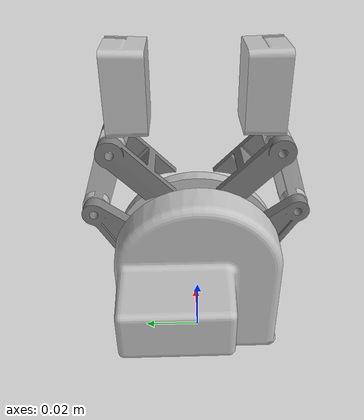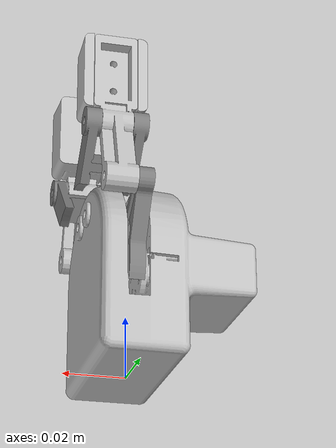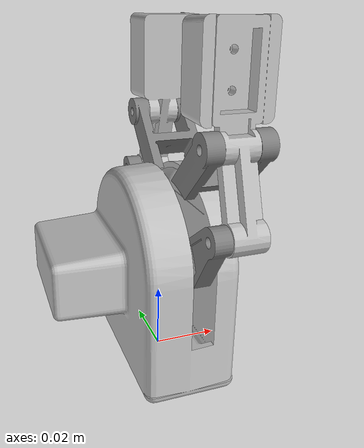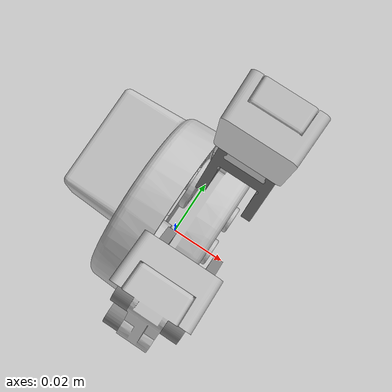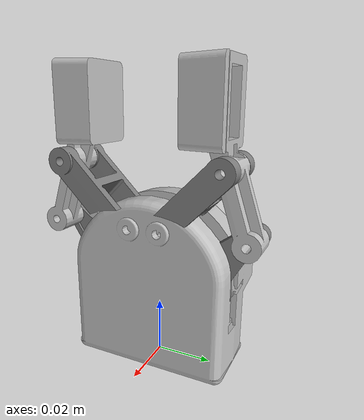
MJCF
<mujoco model="elephant_gripper">
  <option timestep="0.001" gravity="0 0 -9.80665"/>
  <compiler angle="radian" meshdir="../assets/"/>

  <asset>
    <mesh name="base_link" file="gripper_base_link.STL"/>
    <mesh name="l_link_1" file="gripper_l_link_1.STL"/>
    <mesh name="l_link_2" file="gripper_l_link_2.STL"/>
    <mesh name="r_link_1" file="gripper_r_link_1.STL"/>
    <mesh name="r_link_2" file="gripper_r_link_2.STL"/>
    <mesh name="l_link_3" file="gripper_l_link_3.STL"/>
    <mesh name="r_link_3" file="gripper_r_link_3.STL"/>
  </asset>

  <contact>
    <exclude body1="l_link_2" body2="l_link_3"/>
    <exclude body1="l_link_2" body2="l_link_1"/>
    <exclude body1="l_link_1" body2="l_link_3"/>
    <exclude body1="l_link_1" body2="r_link_1"/>
    <exclude body1="l_link_1" body2="r_link_2"/>
    <exclude body1="l_link_1" body2="r_link_3"/>
    <exclude body1="LballB" body2="l_link_2"/>
    <exclude body1="RballB" body2="r_link_2"/>

    <exclude body1="r_link_2" body2="r_link_3"/>
    <exclude body1="r_link_2" body2="r_link_1"/>
    <exclude body1="r_link_1" body2="r_link_3"/>
    <exclude body1="handbase" body2="l_link_1"/>
    <exclude body1="handbase" body2="l_link_2"/>
    <exclude body1="handbase" body2="l_link_3"/>
    <exclude body1="handbase" body2="r_link_1"/>
    <exclude body1="handbase" body2="r_link_2"/>
    <exclude body1="handbase" body2="r_link_3"/>
  </contact>

  <worldbody>
    <body name="handbase" pos="0 0 0" quat="1 0 0 0">
      <geom type="mesh" rgba="0.75294 0.75294 0.75294 1" mesh="base_link"/>
      <body name="l_link_1" pos="0 0 0" quat="1 0 0 0">
        <inertial pos="0.00249405 0.000667774 0.0227231" quat="0.986402 0.164348 -0.000604487 0.000576867" mass="0.0010225" diaginertia="6.16352e-08 5.22901e-08 1.27916e-08"/>
        <joint name="l_joint_1" pos="0.01 0.01325 0.0298" axis="1 0 0"/>
        <geom type="mesh" rgba="0.498039 0.498039 0.498039 1" mesh="l_link_1"/>
        <site name="lj1_site" pos="0.01 0.01325 0.0298" size="0.002" rgba="0 1 0 1" type="sphere"/>
        <body name="l_link_2" pos="0 0 0" quat="1 0 0 0">
          <inertial pos="0.005 -0.000242698 0.0344848" quat="0.70591 -0.0411173 0.0411173 0.70591" mass="0.0091567" diaginertia="1.97509e-06 1.78867e-06 3.93352e-07"/>
          <joint name="l_joint_2" pos="0.01 0.03516985 0.05171997" axis="1 0 0"/>
          <geom type="mesh" rgba="0.752941 0.752941 0.752941 1" mesh="l_link_2"/>
        </body>
      </body>
      <body name="r_link_1" pos="0 0 0" quat="1 0 0 0">
        <inertial pos="0.00249263 -0.000116357 0.0249006" quat="0.99702 -0.0771345 -0.000867314 -0.000367536" mass="0.000846765" diaginertia="3.13221e-08 2.53984e-08 8.78471e-09"/>
        <joint name="r_joint_1" pos="0.01 -0.01225 0.0298" axis="1 0 0"/>
        <geom type="mesh" rgba="0.498039 0.498039 0.498039 1" mesh="r_link_1"/>
        <site name="rj1_site" pos="0.01 -0.01225 0.0298" size="0.002" rgba="0 1 0 1" type="sphere"/>
        <body name="r_link_2" pos="0 0 0" quat="1 0 0 0">
          <inertial pos="0.005 0.000242582 0.0344848" quat="0.70591 0.0411185 -0.0411185 0.70591" mass="0.0091567" diaginertia="1.97509e-06 1.78867e-06 3.93352e-07"/>
          <joint name="r_joint_2" pos="0.01 -0.03416985 0.05171997" axis="1 0 0"/>
          <geom type="mesh" rgba="0.752941 0.752941 0.752941 1" mesh="r_link_2"/>
        </body>
      </body>
      <body name="l_link_3" pos="0 0 0" quat="1 0 0 0">
        <inertial pos="0.00309099 -0.00011836 0.0221007" quat="0.707092 0.00346058 0.0270198 0.706597" mass="0.00238423" diaginertia="2.43328e-07 1.40407e-07 1.3392e-07"/>
        <joint name="l_joint_3" pos="0.01 0.006 0.05163" axis="1 0 0"/>
        <geom type="mesh" rgba="0.498039 0.498039 0.498039 1" mesh="l_link_3"/>
        <body name="LballB" pos="0.01 0.02791985 0.07354997">
          <geom type="sphere" size="0.001" rgba="0 1 0 1" />
          <joint name="lj_LballBx" type="hinge" pos="0 0 0" axis="1 0 0" />
          <joint name="lj_LballBy" type="hinge" pos="0 0 0" axis="0 1 0" />
        </body>
      </body>
      <body name="r_link_3" pos="0 0 0" quat="1 0 0 0">
        <inertial pos="0.00310901 0.00011836 0.0221007" quat="0.707092 -0.00346058 -0.0270198 0.706597" mass="0.00238423" diaginertia="2.43328e-07 1.40407e-07 1.3392e-07"/>
        <joint name="r_joint_3" pos="0.01 -0.005 0.05163" axis="1 0 0"/>
        <geom type="mesh" rgba="0.498039 0.498039 0.498039 1" mesh="r_link_3"/>
        <body name="RballB" pos="0.01 -0.02691985 0.07354997">
          <geom type="sphere" size="0.001" rgba="0 1 0 1" />
          <joint name="lj_RballBx" type="hinge" pos="0 0 0" axis="1 0 0" />
          <joint name="lj_RballBy" type="hinge" pos="0 0 0" axis="0 1 0" />
        </body>
      </body>
    </body>
  </worldbody>

  <actuator>
    <position name="handmotor" joint="l_joint_1" kp="0.05" kv="0.001"/>
  </actuator>

  <equality>
    <joint name="opposite_motion" joint1="l_joint_1" joint2="r_joint_1" polycoef="0 -1 0 0"/>
    <connect name="connect1" body1="l_link_2" body2="LballB" anchor="0.01 0.02791985 0.07354997" active="true"/>
    <connect name="connect2" body1="r_link_2" body2="RballB" anchor="0.01 -0.02691985 0.07354997" active="true"/>
  </equality>

</mujoco>
